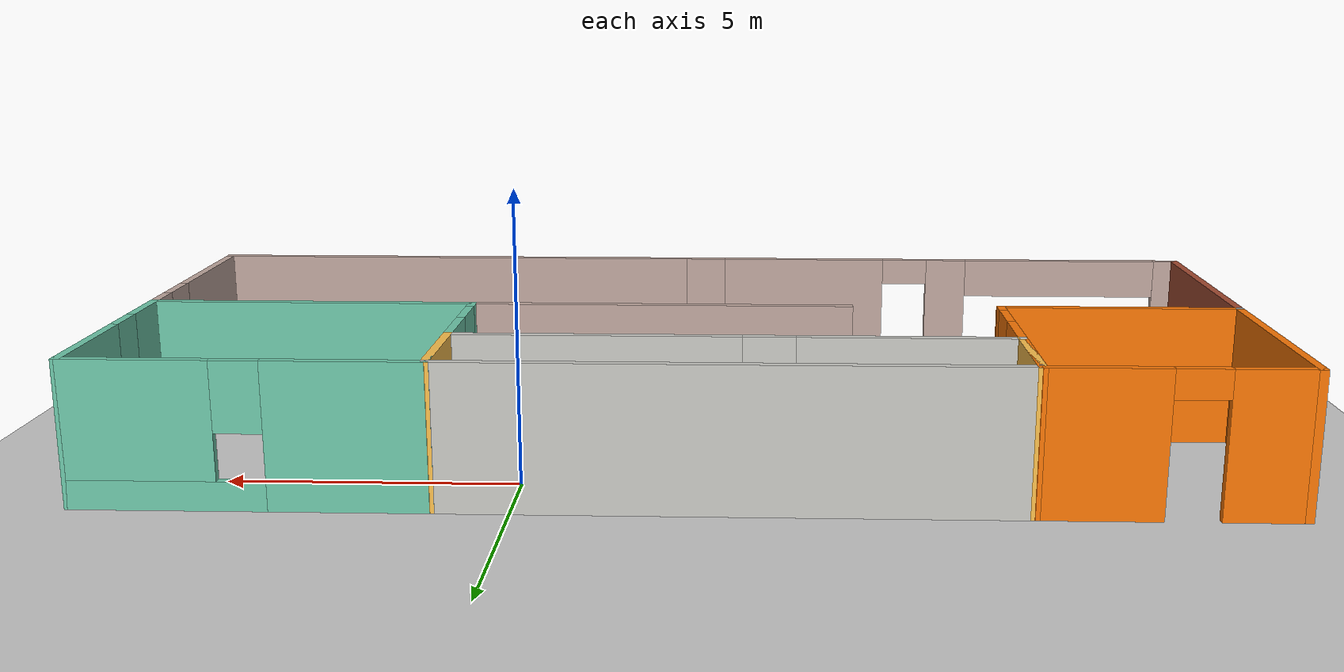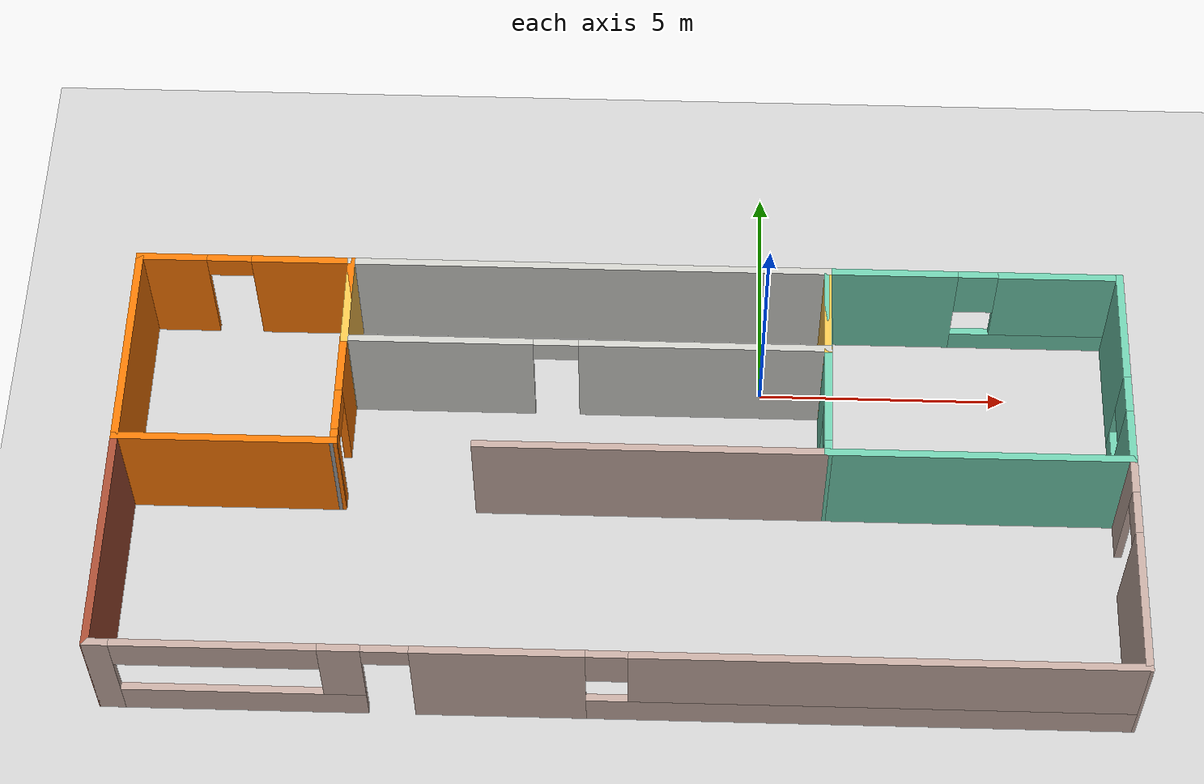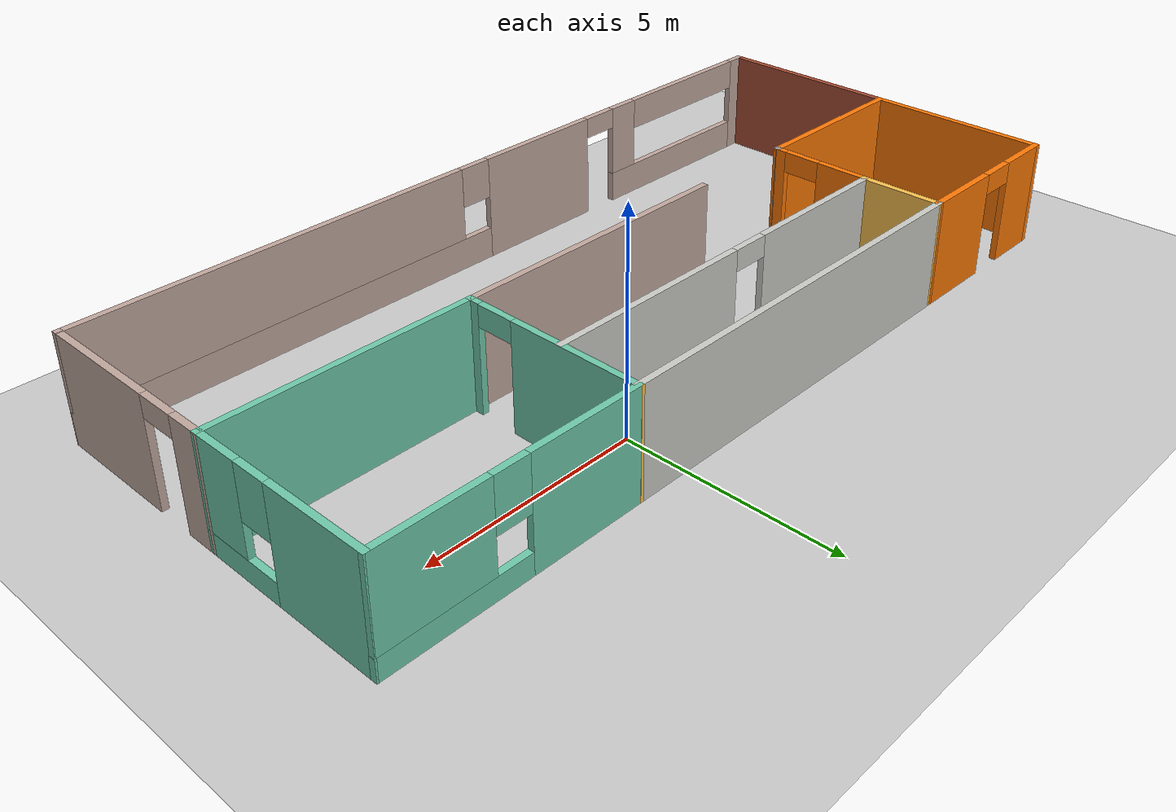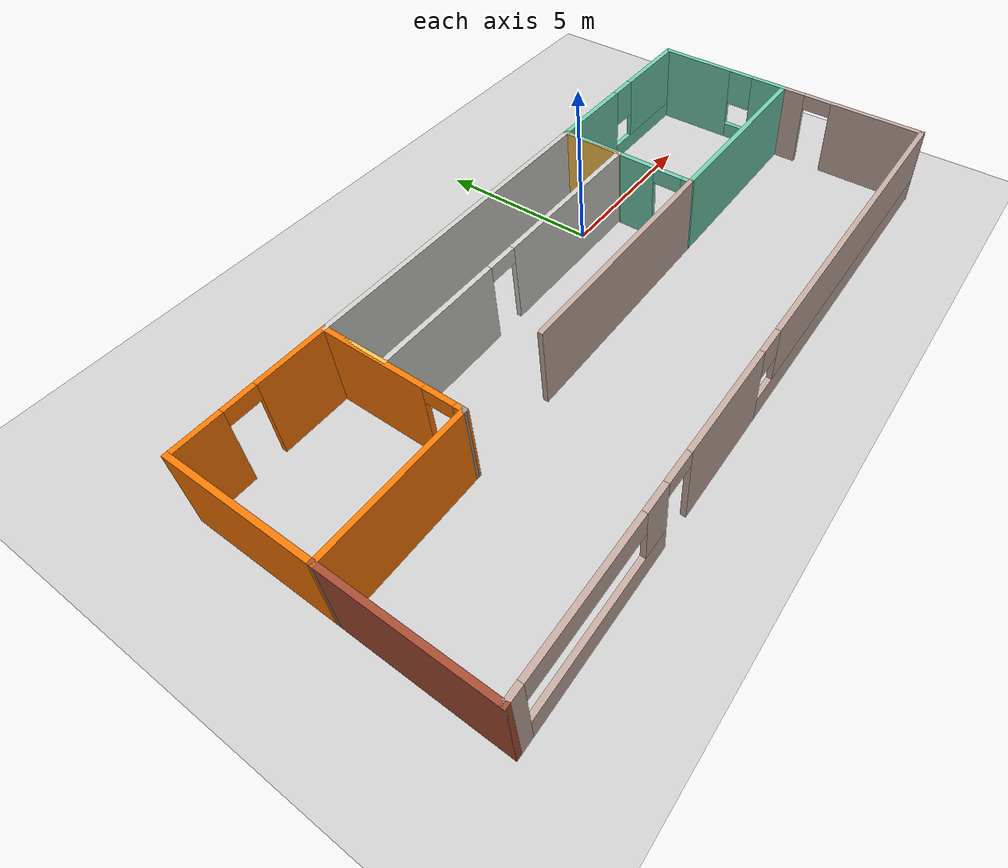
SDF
<sdf version="1.7">
 <world name="default">
  <model name="ground_plane">
   <static>1</static>
   <link name="link">
    <collision name="collision">
     <geometry><plane><normal>0 0 1</normal><size>100 100</size></plane></geometry>
     <surface>
      <contact><collide_bitmask>65535</collide_bitmask></contact>
      <friction><ode><mu>100</mu><mu2>50</mu2></ode></friction>
     </surface>
    </collision>
    <visual name="visual">
     <cast_shadows>0</cast_shadows>
     <geometry><plane><normal>0 0 1</normal><size>100 100</size></plane></geometry>
     <material>
      <script><uri>file://media/materials/scripts/gazebo.material</uri><name>Gazebo/Grey</name></script>
     </material>
    </visual>
   </link>
  </model>
  <model name="House">
   <pose>-2.75299 -2.99954 0 0 -0 0</pose>
   <link name="Wall_0">
    <pose>-0.000507 -4.41346 0 0 -0 0</pose>
    <visual name="Wall_0_Visual_0">
     <pose>-9.69615 0 1.25 0 -0 0</pose>
     <geometry><box><size>0.510706 0.15 2.5</size></box></geometry>
     <material>
      <script><uri>file://media/materials/scripts/gazebo.material</uri><name>Gazebo/Grey</name></script>
      <ambient>0.760784 0.662745 0.627451 1</ambient>
     </material>
     <meta><layer>0</layer></meta>
    </visual>
    <collision name="Wall_0_Collision_0">
     <geometry><box><size>0.510706 0.15 2.5</size></box></geometry>
     <pose>-9.69615 0 1.25 0 -0 0</pose>
    </collision>
    <visual name="Wall_0_Visual_1">
     <pose>-2.21069 0 1.25 0 -0 0</pose>
     <geometry><box><size>3.28211 0.15 2.5</size></box></geometry>
     <material>
      <script><uri>file://media/materials/scripts/gazebo.material</uri><name>Gazebo/Grey</name></script>
      <ambient>0.760784 0.662745 0.627451 1</ambient>
     </material>
     <meta><layer>0</layer></meta>
    </visual>
    <collision name="Wall_0_Collision_1">
     <geometry><box><size>3.28211 0.15 2.5</size></box></geometry>
     <pose>-2.21069 0 1.25 0 -0 0</pose>
    </collision>
    <visual name="Wall_0_Visual_2">
     <pose>-7.09627 0 0.375 0 -0 0</pose>
     <geometry><box><size>4.68905 0.15 0.75</size></box></geometry>
     <material>
      <script><uri>file://media/materials/scripts/gazebo.material</uri><name>Gazebo/Grey</name></script>
      <ambient>0.760784 0.662745 0.627451 1</ambient>
     </material>
     <meta><layer>0</layer></meta>
    </visual>
    <collision name="Wall_0_Collision_2">
     <geometry><box><size>4.68905 0.15 0.75</size></box></geometry>
     <pose>-7.09627 0 0.375 0 -0 0</pose>
    </collision>
    <visual name="Wall_0_Visual_3">
     <pose>4.69093 0 0.375 0 -0 0</pose>
     <geometry><box><size>10.5211 0.15 0.75</size></box></geometry>
     <material>
      <script><uri>file://media/materials/scripts/gazebo.material</uri><name>Gazebo/Grey</name></script>
      <ambient>0.760784 0.662745 0.627451 1</ambient>
     </material>
     <meta><layer>0</layer></meta>
    </visual>
    <collision name="Wall_0_Collision_3">
     <geometry><box><size>10.5211 0.15 0.75</size></box></geometry>
     <pose>4.69093 0 0.375 0 -0 0</pose>
    </collision>
    <visual name="Wall_0_Visual_4">
     <pose>-5.15627 0 1.625 0 -0 0</pose>
     <geometry><box><size>0.809051 0.15 1.75</size></box></geometry>
     <material>
      <script><uri>file://media/materials/scripts/gazebo.material</uri><name>Gazebo/Grey</name></script>
      <ambient>0.760784 0.662745 0.627451 1</ambient>
     </material>
     <meta><layer>0</layer></meta>
    </visual>
    <collision name="Wall_0_Collision_4">
     <geometry><box><size>0.809051 0.15 1.75</size></box></geometry>
     <pose>-5.15627 0 1.625 0 -0 0</pose>
    </collision>
    <visual name="Wall_0_Visual_5">
     <pose>-5.15627 0 1.625 0 -0 0</pose>
     <geometry><box><size>0.809051 0.15 1.75</size></box></geometry>
     <material>
      <script><uri>file://media/materials/scripts/gazebo.material</uri><name>Gazebo/Grey</name></script>
      <ambient>0.760784 0.662745 0.627451 1</ambient>
     </material>
     <meta><layer>0</layer></meta>
    </visual>
    <collision name="Wall_0_Collision_5">
     <geometry><box><size>0.809051 0.15 1.75</size></box></geometry>
     <pose>-5.15627 0 1.625 0 -0 0</pose>
    </collision>
    <visual name="Wall_0_Visual_6">
     <pose>5.09093 0 1.625 0 -0 0</pose>
     <geometry><box><size>9.72114 0.15 1.75</size></box></geometry>
     <material>
      <script><uri>file://media/materials/scripts/gazebo.material</uri><name>Gazebo/Grey</name></script>
      <ambient>0.760784 0.662745 0.627451 1</ambient>
     </material>
     <meta><layer>0</layer></meta>
    </visual>
    <collision name="Wall_0_Collision_6">
     <geometry><box><size>9.72114 0.15 1.75</size></box></geometry>
     <pose>5.09093 0 1.625 0 -0 0</pose>
    </collision>
    <visual name="Wall_0_Visual_7">
     <pose>-0.169637 0 2.025 0 -0 0</pose>
     <geometry><box><size>0.8 0.15 0.95</size></box></geometry>
     <material>
      <script><uri>file://media/materials/scripts/gazebo.material</uri><name>Gazebo/Grey</name></script>
      <ambient>0.760784 0.662745 0.627451 1</ambient>
     </material>
     <meta><layer>0</layer></meta>
    </visual>
    <collision name="Wall_0_Collision_7">
     <geometry><box><size>0.8 0.15 0.95</size></box></geometry>
     <pose>-0.169637 0 2.025 0 -0 0</pose>
    </collision>
    <visual name="Wall_0_Visual_8">
     <pose>-7.50079 0 2.125 0 -0 0</pose>
     <geometry><box><size>3.88 0.15 0.75</size></box></geometry>
     <material>
      <script><uri>file://media/materials/scripts/gazebo.material</uri><name>Gazebo/Grey</name></script>
      <ambient>0.760784 0.662745 0.627451 1</ambient>
     </material>
     <meta><layer>0</layer></meta>
    </visual>
    <collision name="Wall_0_Collision_8">
     <geometry><box><size>3.88 0.15 0.75</size></box></geometry>
     <pose>-7.50079 0 2.125 0 -0 0</pose>
    </collision>
    <visual name="Wall_0_Visual_9">
     <pose>-4.30174 0 2.25 0 -0 0</pose>
     <geometry><box><size>0.9 0.15 0.5</size></box></geometry>
     <material>
      <script><uri>file://media/materials/scripts/gazebo.material</uri><name>Gazebo/Grey</name></script>
      <ambient>0.760784 0.662745 0.627451 1</ambient>
     </material>
     <meta><layer>0</layer></meta>
    </visual>
    <collision name="Wall_0_Collision_9">
     <geometry><box><size>0.9 0.15 0.5</size></box></geometry>
     <pose>-4.30174 0 2.25 0 -0 0</pose>
    </collision>
    <visual name="Wall_0_Visual_10">
     <pose>-4.30174 0 2.25 0 -0 0</pose>
     <geometry><box><size>0.9 0.15 0.5</size></box></geometry>
     <material>
      <script><uri>file://media/materials/scripts/gazebo.material</uri><name>Gazebo/Grey</name></script>
      <ambient>0.760784 0.662745 0.627451 1</ambient>
     </material>
     <meta><layer>0</layer></meta>
    </visual>
    <collision name="Wall_0_Collision_10">
     <geometry><box><size>0.9 0.15 0.5</size></box></geometry>
     <pose>-4.30174 0 2.25 0 -0 0</pose>
    </collision>
   </link>
   <link name="Wall_15">
    <pose>4.00635 2.27068 0 0 -0 -1.58026</pose>
    <visual name="Wall_15_Visual_0">
     <pose>-0.624236 0 1.25 0 -0 0</pose>
     <geometry><box><size>3.18582 0.15 2.5</size></box></geometry>
     <material>
      <script><uri>file://media/materials/scripts/gazebo.material</uri><name>Gazebo/Grey</name></script>
      <ambient>0.435294 0.796078 0.67451 1</ambient>
     </material>
     <meta><layer>0</layer></meta>
    </visual>
    <collision name="Wall_15_Collision_0">
     <geometry><box><size>3.18582 0.15 2.5</size></box></geometry>
     <pose>-0.624236 0 1.25 0 -0 0</pose>
    </collision>
    <visual name="Wall_15_Visual_1">
     <pose>2.04291 0 1.25 0 -0 0</pose>
     <geometry><box><size>0.348472 0.15 2.5</size></box></geometry>
     <material>
      <script><uri>file://media/materials/scripts/gazebo.material</uri><name>Gazebo/Grey</name></script>
      <ambient>0.435294 0.796078 0.67451 1</ambient>
     </material>
     <meta><layer>0</layer></meta>
    </visual>
    <collision name="Wall_15_Collision_1">
     <geometry><box><size>0.348472 0.15 2.5</size></box></geometry>
     <pose>2.04291 0 1.25 0 -0 0</pose>
    </collision>
    <visual name="Wall_15_Visual_2">
     <pose>1.41868 0 2.25 0 -0 0</pose>
     <geometry><box><size>0.9 0.15 0.5</size></box></geometry>
     <material>
      <script><uri>file://media/materials/scripts/gazebo.material</uri><name>Gazebo/Grey</name></script>
      <ambient>0.435294 0.796078 0.67451 1</ambient>
     </material>
     <meta><layer>0</layer></meta>
    </visual>
    <collision name="Wall_15_Collision_2">
     <geometry><box><size>0.9 0.15 0.5</size></box></geometry>
     <pose>1.41868 0 2.25 0 -0 0</pose>
    </collision>
   </link>
   <link name="Wall_24">
    <pose>6.95163 4.41273 0 0 -0 0</pose>
    <visual name="Wall_24_Visual_0">
     <pose>-1.65532 0 1.25 0 -0 0</pose>
     <geometry><box><size>2.68935 0.15 2.5</size></box></geometry>
     <material>
      <script><uri>file://media/materials/scripts/gazebo.material</uri><name>Gazebo/Grey</name></script>
      <ambient>0.435294 0.796078 0.67451 1</ambient>
     </material>
     <meta><layer>0</layer></meta>
    </visual>
    <collision name="Wall_24_Collision_0">
     <geometry><box><size>2.68935 0.15 2.5</size></box></geometry>
     <pose>-1.65532 0 1.25 0 -0 0</pose>
    </collision>
    <visual name="Wall_24_Visual_1">
     <pose>1.34468 0 0.25 0 -0 0</pose>
     <geometry><box><size>3.31065 0.15 0.5</size></box></geometry>
     <material>
      <script><uri>file://media/materials/scripts/gazebo.material</uri><name>Gazebo/Grey</name></script>
      <ambient>0.435294 0.796078 0.67451 1</ambient>
     </material>
     <meta><layer>0</layer></meta>
    </visual>
    <collision name="Wall_24_Collision_1">
     <geometry><box><size>3.31065 0.15 0.5</size></box></geometry>
     <pose>1.34468 0 0.25 0 -0 0</pose>
    </collision>
    <visual name="Wall_24_Visual_2">
     <pose>1.74468 0 1.5 0 -0 0</pose>
     <geometry><box><size>2.51064 0.15 2</size></box></geometry>
     <material>
      <script><uri>file://media/materials/scripts/gazebo.material</uri><name>Gazebo/Grey</name></script>
      <ambient>0.435294 0.796078 0.67451 1</ambient>
     </material>
     <meta><layer>0</layer></meta>
    </visual>
    <collision name="Wall_24_Collision_2">
     <geometry><box><size>2.51064 0.15 2</size></box></geometry>
     <pose>1.74468 0 1.5 0 -0 0</pose>
    </collision>
    <visual name="Wall_24_Visual_3">
     <pose>0.089355 0 1.9 0 -0 0</pose>
     <geometry><box><size>0.8 0.15 1.2</size></box></geometry>
     <material>
      <script><uri>file://media/materials/scripts/gazebo.material</uri><name>Gazebo/Grey</name></script>
      <ambient>0.435294 0.796078 0.67451 1</ambient>
     </material>
     <meta><layer>0</layer></meta>
    </visual>
    <collision name="Wall_24_Collision_3">
     <geometry><box><size>0.8 0.15 1.2</size></box></geometry>
     <pose>0.089355 0 1.9 0 -0 0</pose>
    </collision>
   </link>
   <link name="Wall_25">
    <pose>9.87681 2.27063 0 0 -0 -1.57071</pose>
    <visual name="Wall_25_Visual_0">
     <pose>-0.987582 0 1.25 0 -0 0</pose>
     <geometry><box><size>2.45903 0.15 2.5</size></box></geometry>
     <material>
      <script><uri>file://media/materials/scripts/gazebo.material</uri><name>Gazebo/Grey</name></script>
      <ambient>0.435294 0.796078 0.67451 1</ambient>
     </material>
     <meta><layer>0</layer></meta>
    </visual>
    <collision name="Wall_25_Collision_0">
     <geometry><box><size>2.45903 0.15 2.5</size></box></geometry>
     <pose>-0.987582 0 1.25 0 -0 0</pose>
    </collision>
    <visual name="Wall_25_Visual_1">
     <pose>1.22951 0 0.25 0 -0 0</pose>
     <geometry><box><size>1.97516 0.15 0.5</size></box></geometry>
     <material>
      <script><uri>file://media/materials/scripts/gazebo.material</uri><name>Gazebo/Grey</name></script>
      <ambient>0.435294 0.796078 0.67451 1</ambient>
     </material>
     <meta><layer>0</layer></meta>
    </visual>
    <collision name="Wall_25_Collision_1">
     <geometry><box><size>1.97516 0.15 0.5</size></box></geometry>
     <pose>1.22951 0 0.25 0 -0 0</pose>
    </collision>
    <visual name="Wall_25_Visual_2">
     <pose>1.62951 0 1.5 0 -0 0</pose>
     <geometry><box><size>1.17516 0.15 2</size></box></geometry>
     <material>
      <script><uri>file://media/materials/scripts/gazebo.material</uri><name>Gazebo/Grey</name></script>
      <ambient>0.435294 0.796078 0.67451 1</ambient>
     </material>
     <meta><layer>0</layer></meta>
    </visual>
    <collision name="Wall_25_Collision_2">
     <geometry><box><size>1.17516 0.15 2</size></box></geometry>
     <pose>1.62951 0 1.5 0 -0 0</pose>
    </collision>
    <visual name="Wall_25_Visual_3">
     <pose>0.641932 0 1.9 0 -0 0</pose>
     <geometry><box><size>0.8 0.15 1.2</size></box></geometry>
     <material>
      <script><uri>file://media/materials/scripts/gazebo.material</uri><name>Gazebo/Grey</name></script>
      <ambient>0.435294 0.796078 0.67451 1</ambient>
     </material>
     <meta><layer>0</layer></meta>
    </visual>
    <collision name="Wall_25_Collision_3">
     <geometry><box><size>0.8 0.15 1.2</size></box></geometry>
     <pose>0.641932 0 1.9 0 -0 0</pose>
    </collision>
   </link>
   <link name="Wall_26">
    <collision name="Wall_26_Collision">
     <geometry><box><size>6.04056 0.15 2.5</size></box></geometry>
     <pose>0 0 1.25 0 -0 0</pose>
    </collision>
    <visual name="Wall_26_Visual">
     <pose>0 0 1.25 0 -0 0</pose>
     <geometry><box><size>6.04056 0.15 2.5</size></box></geometry>
     <material>
      <script><uri>file://media/materials/scripts/gazebo.material</uri><name>Gazebo/Grey</name></script>
      <ambient>0.435294 0.796078 0.67451 1</ambient>
     </material>
     <meta><layer>0</layer></meta>
    </visual>
    <pose>6.93153 0.12858 0 0 -0 3.14158</pose>
   </link>
   <link name="Wall_29">
    <pose>-7.73551 4.41254 0 0 -0 3.14159</pose>
    <visual name="Wall_29_Visual_0">
     <pose>-1.16782 0 1.25 0 -0 0</pose>
     <geometry><box><size>2.09737 0.15 2.5</size></box></geometry>
     <material>
      <script><uri>file://media/materials/scripts/gazebo.material</uri><name>Gazebo/Grey</name></script>
      <ambient>0.996078 0.47451 0.0196078 1</ambient>
     </material>
     <meta><layer>0</layer></meta>
    </visual>
    <collision name="Wall_29_Collision_0">
     <geometry><box><size>2.09737 0.15 2.5</size></box></geometry>
     <pose>-1.16782 0 1.25 0 -0 0</pose>
    </collision>
    <visual name="Wall_29_Visual_1">
     <pose>1.49869 0 1.25 0 -0 0</pose>
     <geometry><box><size>1.43563 0.15 2.5</size></box></geometry>
     <material>
      <script><uri>file://media/materials/scripts/gazebo.material</uri><name>Gazebo/Grey</name></script>
      <ambient>0.996078 0.47451 0.0196078 1</ambient>
     </material>
     <meta><layer>0</layer></meta>
    </visual>
    <collision name="Wall_29_Collision_1">
     <geometry><box><size>1.43563 0.15 2.5</size></box></geometry>
     <pose>1.49869 0 1.25 0 -0 0</pose>
    </collision>
    <visual name="Wall_29_Visual_2">
     <pose>0.330871 0 2.25 0 -0 0</pose>
     <geometry><box><size>0.9 0.15 0.5</size></box></geometry>
     <material>
      <script><uri>file://media/materials/scripts/gazebo.material</uri><name>Gazebo/Grey</name></script>
      <ambient>0.996078 0.47451 0.0196078 1</ambient>
     </material>
     <meta><layer>0</layer></meta>
    </visual>
    <collision name="Wall_29_Collision_2">
     <geometry><box><size>0.9 0.15 0.5</size></box></geometry>
     <pose>0.330871 0 2.25 0 -0 0</pose>
    </collision>
   </link>
   <link name="Wall_36">
    <collision name="Wall_36_Collision">
     <geometry><box><size>0.15 0.15 2.5</size></box></geometry>
     <pose>0 0 1.25 0 -0 0</pose>
    </collision>
    <visual name="Wall_36_Visual">
     <pose>0 0 1.25 0 -0 0</pose>
     <geometry><box><size>0.15 0.15 2.5</size></box></geometry>
     <material>
      <script><uri>file://media/materials/scripts/gazebo.material</uri><name>Gazebo/Grey</name></script>
      <ambient>1 1 1 1</ambient>
     </material>
     <meta><layer>0</layer></meta>
    </visual>
    <pose>-5.61393 0.128624 0 0 -0 0</pose>
   </link>
   <link name="Wall_37">
    <collision name="Wall_37_Collision">
     <geometry><box><size>4.41308 0.15 2.5</size></box></geometry>
     <pose>0 0 1.25 0 -0 0</pose>
    </collision>
    <visual name="Wall_37_Visual">
     <pose>0 0 1.25 0 -0 0</pose>
     <geometry><box><size>4.41308 0.15 2.5</size></box></geometry>
     <material>
      <script><uri>file://media/materials/scripts/gazebo.material</uri><name>Gazebo/Grey</name></script>
      <ambient>0.996078 0.47451 0.0196078 1</ambient>
     </material>
     <meta><layer>0</layer></meta>
    </visual>
    <pose>-7.74547 0.12858 0 0 -0 -3.14157</pose>
   </link>
   <link name="Wall_38">
    <collision name="Wall_38_Collision">
     <geometry><box><size>0.15 0.15 2.5</size></box></geometry>
     <pose>0 0 1.25 0 -0 0</pose>
    </collision>
    <visual name="Wall_38_Visual">
     <pose>0 0 1.25 0 -0 0</pose>
     <geometry><box><size>0.15 0.15 2.5</size></box></geometry>
     <material>
      <script><uri>file://media/materials/scripts/gazebo.material</uri><name>Gazebo/Grey</name></script>
      <ambient>1 1 1 1</ambient>
     </material>
     <meta><layer>0</layer></meta>
    </visual>
    <pose>-9.87701 0.128537 0 0 -0 0</pose>
   </link>
   <link name="Wall_39">
    <collision name="Wall_39_Collision">
     <geometry><box><size>4.43416 0.15 2.5</size></box></geometry>
     <pose>0 0 1.25 0 -0 0</pose>
    </collision>
    <visual name="Wall_39_Visual">
     <pose>0 0 1.25 0 -0 0</pose>
     <geometry><box><size>4.43416 0.15 2.5</size></box></geometry>
     <material>
      <script><uri>file://media/materials/scripts/gazebo.material</uri><name>Gazebo/Grey</name></script>
      <ambient>0.996078 0.47451 0.0196078 1</ambient>
     </material>
     <meta><layer>0</layer></meta>
    </visual>
    <pose>-9.87701 2.27054 0 0 -0 1.5708</pose>
   </link>
   <link name="Wall_41">
    <pose>-5.60397 2.27058 0 0 -0 -1.57545</pose>
    <visual name="Wall_41_Visual_0">
     <pose>-0.617155 0 1.25 0 -0 0</pose>
     <geometry><box><size>3.19965 0.15 2.5</size></box></geometry>
     <material>
      <script><uri>file://media/materials/scripts/gazebo.material</uri><name>Gazebo/Grey</name></script>
      <ambient>0.996078 0.47451 0.0196078 1</ambient>
     </material>
     <meta><layer>0</layer></meta>
    </visual>
    <collision name="Wall_41_Collision_0">
     <geometry><box><size>3.19965 0.15 2.5</size></box></geometry>
     <pose>-0.617155 0 1.25 0 -0 0</pose>
    </collision>
    <visual name="Wall_41_Visual_1">
     <pose>2.04982 0 1.25 0 -0 0</pose>
     <geometry><box><size>0.334309 0.15 2.5</size></box></geometry>
     <material>
      <script><uri>file://media/materials/scripts/gazebo.material</uri><name>Gazebo/Grey</name></script>
      <ambient>0.996078 0.47451 0.0196078 1</ambient>
     </material>
     <meta><layer>0</layer></meta>
    </visual>
    <collision name="Wall_41_Collision_1">
     <geometry><box><size>0.334309 0.15 2.5</size></box></geometry>
     <pose>2.04982 0 1.25 0 -0 0</pose>
    </collision>
    <visual name="Wall_41_Visual_2">
     <pose>1.43267 0 2.25 0 -0 0</pose>
     <geometry><box><size>0.9 0.15 0.5</size></box></geometry>
     <material>
      <script><uri>file://media/materials/scripts/gazebo.material</uri><name>Gazebo/Grey</name></script>
      <ambient>0.996078 0.47451 0.0196078 1</ambient>
     </material>
     <meta><layer>0</layer></meta>
    </visual>
    <collision name="Wall_41_Collision_2">
     <geometry><box><size>0.9 0.15 0.5</size></box></geometry>
     <pose>1.43267 0 2.25 0 -0 0</pose>
    </collision>
   </link>
   <link name="Wall_43">
    <collision name="Wall_43_Collision">
     <geometry><box><size>9.77063 0.15 2.5</size></box></geometry>
     <pose>0 0 1.25 0 -0 0</pose>
    </collision>
    <visual name="Wall_43_Visual">
     <pose>0 0 1.25 0 -0 0</pose>
     <geometry><box><size>9.77063 0.15 2.5</size></box></geometry>
     <material>
      <script><uri>file://media/materials/scripts/gazebo.material</uri><name>Gazebo/CeilingTiled</name></script>
      <ambient>1 0.764706 0.305882 1</ambient>
     </material>
     <meta><layer>0</layer></meta>
    </visual>
    <pose>-0.783691 4.41263 0 0 -0 2e-05</pose>
   </link>
   <link name="Wall_45">
    <pose>-0.792421 2.54123 0 0 -0 0</pose>
    <visual name="Wall_45_Visual_0">
     <pose>-2.96369 0 1.25 0 -0 0</pose>
     <geometry><box><size>3.82261 0.15 2.5</size></box></geometry>
     <material>
      <script><uri>file://media/materials/scripts/gazebo.material</uri><name>Gazebo/CeilingTiled</name></script>
      <ambient>1 0.764706 0.305882 1</ambient>
     </material>
     <meta><layer>0</layer></meta>
    </visual>
    <collision name="Wall_45_Collision_0">
     <geometry><box><size>3.82261 0.15 2.5</size></box></geometry>
     <pose>-2.96369 0 1.25 0 -0 0</pose>
    </collision>
    <visual name="Wall_45_Visual_1">
     <pose>2.36131 0 1.25 0 -0 0</pose>
     <geometry><box><size>5.02738 0.15 2.5</size></box></geometry>
     <material>
      <script><uri>file://media/materials/scripts/gazebo.material</uri><name>Gazebo/CeilingTiled</name></script>
      <ambient>1 0.764706 0.305882 1</ambient>
     </material>
     <meta><layer>0</layer></meta>
    </visual>
    <collision name="Wall_45_Collision_1">
     <geometry><box><size>5.02738 0.15 2.5</size></box></geometry>
     <pose>2.36131 0 1.25 0 -0 0</pose>
    </collision>
    <visual name="Wall_45_Visual_2">
     <pose>-0.602385 0 2.25 0 -0 0</pose>
     <geometry><box><size>0.9 0.15 0.5</size></box></geometry>
     <material>
      <script><uri>file://media/materials/scripts/gazebo.material</uri><name>Gazebo/CeilingTiled</name></script>
      <ambient>1 0.764706 0.305882 1</ambient>
     </material>
     <meta><layer>0</layer></meta>
    </visual>
    <collision name="Wall_45_Collision_2">
     <geometry><box><size>0.9 0.15 0.5</size></box></geometry>
     <pose>-0.602385 0 2.25 0 -0 0</pose>
    </collision>
   </link>
   <link name="Wall_46">
    <collision name="Wall_46_Collision">
     <geometry><box><size>2.04187 0.15 2.5</size></box></geometry>
     <pose>0 0 1.25 0 -0 0</pose>
    </collision>
    <visual name="Wall_46_Visual">
     <pose>0 0 1.25 0 -0 0</pose>
     <geometry><box><size>2.04187 0.15 2.5</size></box></geometry>
     <material>
      <script><uri>file://media/materials/scripts/gazebo.material</uri><name>Gazebo/Grey</name></script>
      <ambient>1 0.764706 0.305882 1</ambient>
     </material>
     <meta><layer>0</layer></meta>
    </visual>
    <pose>4.0171 3.46684 0 0 -0 1.56073</pose>
   </link>
   <link name="Wall_48">
    <collision name="Wall_48_Collision">
     <geometry><box><size>2.04158 0.15 2.5</size></box></geometry>
     <pose>0 0 1.25 0 -0 0</pose>
    </collision>
    <visual name="Wall_48_Visual">
     <pose>0 0 1.25 0 -0 0</pose>
     <geometry><box><size>2.04158 0.15 2.5</size></box></geometry>
     <material>
      <script><uri>file://media/materials/scripts/gazebo.material</uri><name>Gazebo/Grey</name></script>
      <ambient>1 0.764706 0.305882 1</ambient>
     </material>
     <meta><layer>0</layer></meta>
    </visual>
    <pose>-5.59321 3.46674 0 0 -0 1.57163</pose>
   </link>
   <link name="Wall_52">
    <collision name="Wall_52_Collision">
     <geometry><box><size>7 0.15 2.5</size></box></geometry>
     <pose>0 0 1.25 0 -0 0</pose>
    </collision>
    <visual name="Wall_52_Visual">
     <pose>0 0 1.25 0 -0 0</pose>
     <geometry><box><size>7 0.15 2.5</size></box></geometry>
     <material>
      <script><uri>file://media/materials/scripts/gazebo.material</uri><name>Gazebo/Grey</name></script>
      <ambient>0.760784 0.662745 0.627451 1</ambient>
     </material>
     <meta><layer>0</layer></meta>
    </visual>
    <pose>0.561069 0.128624 0 0 -0 3.14159</pose>
   </link>
   <link name="Wall_54">
    <collision name="Wall_54_Collision">
     <geometry><box><size>4.692 0.15 2.5</size></box></geometry>
     <pose>0 0 1.25 0 -0 0</pose>
    </collision>
    <visual name="Wall_54_Visual">
     <pose>0 0 1.25 0 -0 0</pose>
     <geometry><box><size>4.692 0.15 2.5</size></box></geometry>
     <material>
      <script><uri>file://media/materials/scripts/gazebo.material</uri><name>Gazebo/Bricks</name></script>
      <ambient>0.760784 0.662745 0.627451 1</ambient>
     </material>
     <meta><layer>0</layer></meta>
    </visual>
    <pose>-9.87701 -2.14246 0 0 -0 -1.5708</pose>
   </link>
   <link name="Wall_56">
    <pose>9.87649 -2.14246 0 0 -0 -1.57102</pose>
    <visual name="Wall_56_Visual_0">
     <pose>-1.93505 0 1.25 0 -0 0</pose>
     <geometry><box><size>0.821891 0.15 2.5</size></box></geometry>
     <material>
      <script><uri>file://media/materials/scripts/gazebo.material</uri><name>Gazebo/Grey</name></script>
      <ambient>0.760784 0.662745 0.627451 1</ambient>
     </material>
     <meta><layer>0</layer></meta>
    </visual>
    <collision name="Wall_56_Collision_0">
     <geometry><box><size>0.821891 0.15 2.5</size></box></geometry>
     <pose>-1.93505 0 1.25 0 -0 0</pose>
    </collision>
    <visual name="Wall_56_Visual_1">
     <pose>0.860945 0 1.25 0 -0 0</pose>
     <geometry><box><size>2.97011 0.15 2.5</size></box></geometry>
     <material>
      <script><uri>file://media/materials/scripts/gazebo.material</uri><name>Gazebo/Grey</name></script>
      <ambient>0.760784 0.662745 0.627451 1</ambient>
     </material>
     <meta><layer>0</layer></meta>
    </visual>
    <collision name="Wall_56_Collision_1">
     <geometry><box><size>2.97011 0.15 2.5</size></box></geometry>
     <pose>0.860945 0 1.25 0 -0 0</pose>
    </collision>
    <visual name="Wall_56_Visual_2">
     <pose>-1.07411 0 2.25 0 -0 0</pose>
     <geometry><box><size>0.9 0.15 0.5</size></box></geometry>
     <material>
      <script><uri>file://media/materials/scripts/gazebo.material</uri><name>Gazebo/Grey</name></script>
      <ambient>0.760784 0.662745 0.627451 1</ambient>
     </material>
     <meta><layer>0</layer></meta>
    </visual>
    <collision name="Wall_56_Collision_2">
     <geometry><box><size>0.9 0.15 0.5</size></box></geometry>
     <pose>-1.07411 0 2.25 0 -0 0</pose>
    </collision>
   </link>
   <static>1</static>
  </model>
 </world>
</sdf>
